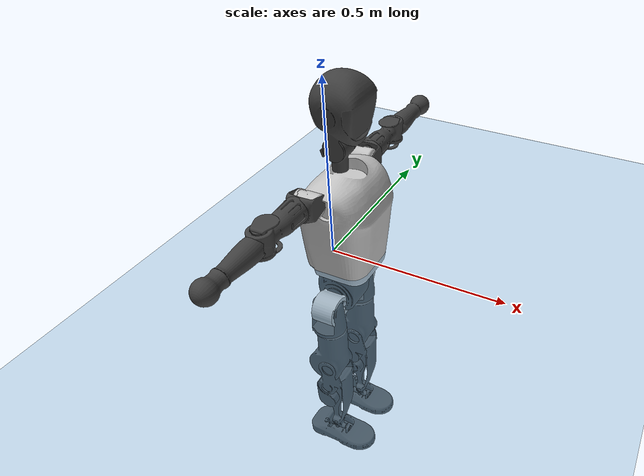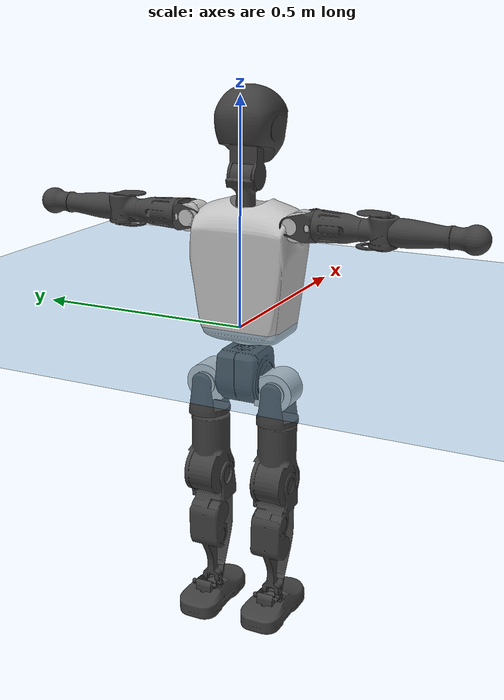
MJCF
<mujoco model="T1">
  <compiler angle="radian" assetdir="assets" balanceinertia="true" inertiafromgeom="false"/>

  <option timestep="0.005" density="1.2" viscosity="2e-05"/>

  <size nkey="1"/>

  <visual>
    <quality shadowsize="8192"/>
    <map shadowclip="0.5"/>
  </visual>

  <default>
    <default class="/">
      <joint armature="0.01" damping="0.01" frictionloss="0.1"/>
      <geom contype="0" conaffinity="0" group="1" solref="-1000 -80"/>
      <site size="0.01 0.005 0.005" group="5"/>
      <general forcelimited="true" biastype="affine" gainprm="25" biasprm="0 -25 -0.6"/>
      <default class="t1">
        <geom rgba="0.25 0.25 0.25 1"/>
        <default class="visual">
          <geom type="mesh" group="2"/>
        </default>
        <default class="collision">
          <geom group="3"/>
        </default>
        <default class="foot">
          <geom size="0.1115 0.05 0.015" type="box" condim="6" group="4" priority="1" solimp="0.015 1 0.015"/>
        </default>
        <default class="reward_collision_sphere">
          <geom group="5" rgba="1 0 0 1"/>
        </default>
      </default>
    </default>
  </default>

  <asset>
    <texture type="skybox" colorspace="auto" name="//unnamed_texture_0" builtin="gradient" rgb1="0.95 0.95 0.95" rgb2="0.95 0.95 0.95" width="100" height="600"/>
    <texture type="2d" colorspace="auto" name="texplane" builtin="checker" rgb1="0.345 0.575 0.748" rgb2="0.345 0.575 0.748" markrgb="1 1 1" width="512" height="512"/>
    <material name="MatPlane" class="/" texture="texplane" texuniform="true" texrepeat="2 2" specular="0.9"/>
    <mesh name="Trunk" class="/" file="Trunk.stl"/>
    <mesh name="H1" class="/" file="H1.stl"/>
    <mesh name="H2" class="/" file="H2.stl"/>
    <mesh name="AL1" class="/" file="AL1.stl"/>
    <mesh name="AL2" class="/" file="AL2.stl"/>
    <mesh name="AL3" class="/" file="AL3.stl"/>
    <mesh name="left_hand_link" class="/" file="left_hand_link.stl"/>
    <mesh name="AR1" class="/" file="AR1.stl"/>
    <mesh name="AR2" class="/" file="AR2.stl"/>
    <mesh name="AR3" class="/" file="AR3.stl"/>
    <mesh name="right_hand_link" class="/" file="right_hand_link.stl"/>
    <mesh name="Waist" class="/" file="Waist.stl"/>
    <mesh name="Hip_Pitch_Left" class="/" file="Hip_Pitch_Left.stl"/>
    <mesh name="Hip_Roll_Left" class="/" file="Hip_Roll_Left.stl"/>
    <mesh name="Hip_Yaw_Left" class="/" file="Hip_Yaw_Left.stl"/>
    <mesh name="Shank_Left" class="/" file="Shank_Left.stl"/>
    <mesh name="Ankle_Cross_Left" class="/" file="Ankle_Cross_Left.stl"/>
    <mesh name="left_foot_link" class="/" file="left_foot_link.stl"/>
    <mesh name="Hip_Pitch_Right" class="/" file="Hip_Pitch_Right.stl"/>
    <mesh name="Hip_Roll_Right" class="/" file="Hip_Roll_Right.stl"/>
    <mesh name="Hip_Yaw_Right" class="/" file="Hip_Yaw_Right.stl"/>
    <mesh name="Shank_Right" class="/" file="Shank_Right.stl"/>
    <mesh name="Ankle_Cross_Right" class="/" file="Ankle_Cross_Right.stl"/>
    <mesh name="right_foot_link" class="/" file="right_foot_link.stl"/>
  </asset>

  <worldbody>
    <geom name="floor" class="/" size="100 100 0.125" type="plane" group="0" material="MatPlane"/>
    <light name="toplight_shadow" class="/" pos="0 0 5" dir="0.0990148 0.0990148 -0.990148" type="directional" ambient="0.04 0.04 0.04" diffuse="0.55 0.55 0.55" specular="0.12 0.12 0.12"/>
    <light name="toplight_fill" class="/" pos="0 0 5" dir="0.0990148 0.0990148 -0.990148" type="directional" castshadow="false" ambient="0.04 0.04 0.04" diffuse="0.3 0.3 0.3" specular="0.08 0.08 0.08"/>
    <body name="trunk" childclass="t1" pos="-0.00048566 -0.00083949 -9.22456e-06" quat="0.999999 1.14425e-05 0.000145498 0.00124065">
      <inertial pos="0.0248986 0.000288793 0.111328" quat="0.999865 0.00900235 -0.0132842 -0.00348457" mass="5.19819" diaginertia="0.00194572 0.0258401 0.0745397"/>
      <joint name="//unnamed_joint_0" type="free" armature="0" damping="0" frictionloss="0"/>
      <geom name="//unnamed_geom_1" class="visual" rgba="0.76 0.76 0.76 1" mesh="Trunk"/>
      <geom name="//unnamed_geom_2" class="collision" size="0.0584438 0.0779251 0.116888" pos="0.0279585 0 0.128008" type="box"/>
      <geom name="//unnamed_geom_3" class="reward_collision_sphere" size="0.0896139" pos="0.0279585 0 0.106673"/>
      <geom name="//unnamed_geom_4" class="reward_collision_sphere" size="0.0116888" pos="0.0279585 0.0684289 0"/>
      <geom name="//unnamed_geom_5" class="reward_collision_sphere" size="0.0116888" pos="0.0279585 -0.0684289 0"/>
      <geom name="//unnamed_geom_6" class="reward_collision_sphere" size="0.0116888" pos="0.0279585 0.0861399 0.192012"/>
      <geom name="//unnamed_geom_7" class="reward_collision_sphere" size="0.0116888" pos="0.0279585 -0.0861399 0.192012"/>
      <site name="imu" pos="0.0207597 -0.00739207 -0.00612653" size="0.00779251"/>
      <camera name="track" pos="0 -1.61009 0" quat="0.707107 0.707107 0 0" mode="trackcom"/>
      <camera name="ego_camera" pos="0.056849 0 0.448027" quat="-0.5 -0.5 0.5 0.5"/>
      <body name="H1" pos="0.0345853 0.00443881 0.264627" quat="0.999999 0.00108182 0.000369534 -0.000264023">
        <inertial pos="-0.000512957 -0.000646146 0.0601473" quat="0.75974 0.0028546 0.0147469 0.650054" mass="0.204448" diaginertia="5.34818e-06 8.01001e-05 0.000207368"/>
        <joint name="AAHead_yaw" pos="0 0 0" axis="-0.0112488 0.0150911 0.999823" range="-1.59033 1.61144" armature="0.00668257" damping="0.0146069" frictionloss="0.0799443"/>
        <geom name="//unnamed_geom_8" class="visual" mesh="H1"/>
        <body name="H2" pos="0.00145421 -0.000480958 0.0650313" quat="0.999999 -0.000935881 0.000427173 6.28519e-05">
          <inertial pos="0.00381137 0.00594451 0.105046" quat="0.987411 0.102923 -0.0841973 -0.0856575" mass="0.282208" diaginertia="4.24823e-05 0.000630325 0.00233398"/>
          <joint name="Head_pitch" pos="0 0 0" axis="-4.91132e-07 -0.999999 0.00147119" range="-1.17435 0.355985" armature="0.00754365" damping="0.00955597" frictionloss="0.0758889"/>
          <geom name="//unnamed_geom_9" class="visual" mesh="H2"/>
          <geom name="//unnamed_geom_10" class="collision" size="0.0623401" pos="0.00465975 0 0.117341"/>
          <geom name="//unnamed_geom_11" class="reward_collision_sphere" size="0.0701326" pos="0.00931951 0 0.106673"/>
        </body>
      </body>
      <body name="AL1" pos="0.0289835 0.0818626 0.233823" quat="1 2.87036e-05 0.000428957 6.76757e-05">
        <inertial pos="0.00442981 0.0319851 0.0016939" quat="0.500711 0.490536 -0.514591 0.49382" mass="0.255462" diaginertia="3.02667e-05 0.000442275 0.000405689"/>
        <joint name="Left_Shoulder_Pitch" pos="0 0 0" axis="-5.15023e-05 0.999995 -0.00314221" range="-3.28126 1.1994" armature="0.00770866" damping="0.0040049" frictionloss="0.0809256"/>
        <geom name="//unnamed_geom_12" class="visual" rgba="0.76 0.76 0.76 1" mesh="AL1"/>
        <body name="AL2" pos="0.00430446 0.0350268 -0.000397703" quat="1 0.000527437 0.000535108 -0.000509536">
          <inertial pos="0.0033082 0.0279261 0.000642995" quat="0.487709 0.511655 -0.487672 0.512372" mass="0.0736222" diaginertia="8.19238e-06 0.000104006 0.000232393"/>
          <joint name="Left_Shoulder_Roll" pos="0 0 0" axis="-0.999972 0.0074632 0.00056837" range="-1.58356 1.80109" armature="0.00773363" damping="0" frictionloss="0.0697729"/>
          <geom name="//unnamed_geom_13" class="visual" mesh="AL2"/>
          <body name="AL3" pos="-0.00409079 0.048382 0.000955521" quat="1 1.6291e-05 -5.71394e-06 3.32679e-05">
            <inertial pos="0.00120665 0.0712456 -0.00211266" quat="0.708865 0.705284 -0.00135408 0.00914308" mass="0.481862" diaginertia="0.000282793 0.00443302 0.000881925"/>
            <joint name="Left_Elbow_Pitch" pos="0 0 0" axis="0.0120646 -0.999927 -9.3069e-05" range="-2.30971 2.22029" armature="0.00894182" damping="0" frictionloss="0.0770303"/>
            <geom name="//unnamed_geom_14" class="visual" mesh="AL3"/>
            <geom name="//unnamed_geom_15" class="collision" size="0.0233775 0.0584438" pos="0 0.0402523 0" quat="0.707105 0.707108 0 0" type="cylinder"/>
            <geom name="//unnamed_geom_16" class="reward_collision_sphere" size="0.028053"/>
            <body name="left_hand_link" pos="0.00226712 0.11888 0.000381735" quat="1 0.00023166 -0.00043828 -0.000587438">
              <inertial pos="-0.00579909 0.0907528 -0.00185732" quat="0.706902 0.707247 -0.00845806 -0.00446631" mass="0.151849" diaginertia="0.000172442 0.00268679 0.000302084"/>
              <joint name="Left_Elbow_Yaw" pos="0 0 0" axis="-0.00309373 -0.000876882 0.999995" stiffness="0.00571431" range="-2.42761 5.89669e-05" armature="0.0071439" damping="0.00147149" frictionloss="0.0706702"/>
              <geom name="//unnamed_geom_17" class="visual" mesh="left_hand_link"/>
              <geom name="//unnamed_geom_18" class="collision" size="0.0233775 0.0681845" pos="0 0.104656 0" quat="0.707105 0.707108 0 0" type="cylinder"/>
              <geom name="//unnamed_geom_19" class="reward_collision_sphere" size="0.0389625"/>
              <geom name="//unnamed_geom_20" class="reward_collision_sphere" size="0.0272738" pos="0 0.088555 0"/>
              <geom name="//unnamed_geom_21" class="reward_collision_sphere" size="0.0272738" pos="0 0.173085 0"/>
            </body>
          </body>
        </body>
      </body>
      <body name="AR1" pos="0.0228487 -0.082051 0.23508" quat="1 0.000164929 0.00054153 -3.25435e-05">
        <inertial pos="0.000469104 -0.0342564 -0.000225141" quat="0.503451 0.495889 -0.505824 0.494745" mass="0.247675" diaginertia="2.95707e-05 0.000445964 0.000404112"/>
        <joint name="Right_Shoulder_Pitch" pos="0 0 0" axis="-0.00672686 -0.999977 -0.000994598" range="-1.20271 3.35294" armature="0.00752798" damping="0.0273857" frictionloss="0.0768582"/>
        <geom name="//unnamed_geom_22" class="visual" rgba="0.76 0.76 0.76 1" mesh="AR1"/>
        <body name="AR2" pos="-0.00395551 -0.0360702 0.0035575" quat="1 -0.000886399 -0.000269561 -0.000178038">
          <inertial pos="0.0013892 -0.032246 0.00462759" quat="0.509952 0.492634 -0.515285 0.481395" mass="0.0749941" diaginertia="8.76172e-06 0.000122554 0.000246822"/>
          <joint name="Right_Shoulder_Roll" pos="0 0 0" axis="-0.999958 -0.00622101 -0.00679247" stiffness="0.017611" range="-1.84033 1.52596" armature="0.00822889" damping="0" frictionloss="0.0743327"/>
          <geom name="//unnamed_geom_23" class="visual" mesh="AR2"/>
          <body name="AR3" pos="-0.00353871 -0.0491802 0.00166819" quat="1 -0.000170413 0.000600874 0.00033972">
            <inertial pos="0.00378149 -0.0668667 -0.000494624" quat="0.705786 0.708424 0.000162381 0.00119152" mass="0.478957" diaginertia="0.000270997 0.00431661 0.000802651"/>
            <joint name="Right_Elbow_Pitch" pos="0 0 0" axis="0.00243063 0.999993 -0.00280266" stiffness="0.0115751" range="-2.26308 2.27553" armature="0.00801533" damping="0" frictionloss="0.0934565"/>
            <geom name="//unnamed_geom_24" class="visual" mesh="AR3"/>
            <geom name="//unnamed_geom_25" class="collision" size="0.0233775 0.0584438" pos="0 -0.0402523 0" quat="0.707105 0.707108 0 0" type="cylinder"/>
            <geom name="//unnamed_geom_26" class="reward_collision_sphere" size="0.028053"/>
            <body name="right_hand_link" pos="-0.000381357 -0.11816 0.00157742" quat="1 -0.000321461 -0.000136925 0.000373543">
              <inertial pos="2.42321e-05 -0.0906296 -0.00211099" quat="0.705434 0.708775 0.000233116 -0.000999614" mass="0.150678" diaginertia="0.000179542 0.00277768 0.000283721"/>
              <joint name="Right_Elbow_Yaw" pos="0 0 0" axis="-0.000948111 -0.00300843 0.999995" range="0.00232221 2.39816" armature="0.00741556" damping="0" frictionloss="0.0913962"/>
              <geom name="//unnamed_geom_27" class="visual" mesh="right_hand_link"/>
              <geom name="//unnamed_geom_28" class="collision" size="0.0233775 0.0681845" pos="0 -0.104656 0" quat="0.707105 0.707108 0 0" type="cylinder"/>
              <geom name="//unnamed_geom_29" class="reward_collision_sphere" size="0.0389625"/>
              <geom name="//unnamed_geom_30" class="reward_collision_sphere" size="0.0272738" pos="0 -0.088555 0"/>
              <geom name="//unnamed_geom_31" class="reward_collision_sphere" size="0.0272738" pos="0 -0.173085 0"/>
            </body>
          </body>
        </body>
      </body>
      <body name="Waist" pos="0.0292454 0.000616465 -0.120555" quat="0.999999 0.000711712 -0.000593013 -0.000873629">
        <inertial pos="-0.000579239 -0.000971062 0.00685207" quat="0.983633 0.00141171 -0.180174 0.00119298" mass="1.22553" diaginertia="0.00010898 0.00183187 0.00604507"/>
        <joint name="Waist" pos="0 0 0" axis="0.00102175 0.00815229 0.999966" range="-1.5707 1.56594" armature="0.00755225" damping="0.0147903" frictionloss="0.0911392"/>
        <geom name="//unnamed_geom_32" class="visual" mesh="Waist"/>
        <body name="Hip_Pitch_Left" pos="0.00170205 0.0878528 -0.00212091" quat="1 -0.000355069 -0.000594716 0.000233326">
          <inertial pos="-0.00121238 -0.00398214 -0.017643" quat="0.97443 0.224023 0.0167386 0.00438966" mass="0.469632" diaginertia="3.89057e-05 0.000473007 0.00161984"/>
          <joint name="Left_Hip_Pitch" pos="0 0 0" axis="-0.0129107 0.999894 0.00674133" stiffness="0.00171633" range="-1.84102 1.57235" armature="0.0075268" damping="0" frictionloss="0.0766175"/>
          <geom name="//unnamed_geom_33" class="visual" rgba="0.76 0.76 0.76 1" mesh="Hip_Pitch_Left"/>
          <body name="Hip_Roll_Left" pos="-0.00347289 0.00255726 -0.0197383" quat="0.999999 -0.00109973 0.000266536 -0.00101713">
            <inertial pos="0.000206268 0.000581857 -0.0570749" quat="0.705422 -0.00753405 -0.00843376 0.708697" mass="0.19766" diaginertia="4.3173e-05 0.000538896 0.000775613"/>
            <joint name="Left_Hip_Roll" pos="0 0 0" axis="-0.999911 0.0052278 0.0122456" stiffness="0.00507987" range="-1.65202 0.160165" armature="0.00758971" damping="0.00726638" frictionloss="0.0715858"/>
            <geom name="//unnamed_geom_34" class="visual" mesh="Hip_Roll_Left"/>
            <geom name="//unnamed_geom_35" class="reward_collision_sphere" size="0.0428588"/>
            <body name="Hip_Yaw_Left" pos="0.000872352 -0.00199329 -0.0871569" quat="0.999999 -0.000268833 -0.000739033 -0.00143394">
              <inertial pos="0.00109479 -0.00330336 -0.097422" quat="0.692331 -0.0287575 -0.0226761 0.72065" mass="0.984957" diaginertia="0.000520035 0.00835051 0.00353402"/>
              <joint name="Left_Hip_Yaw" pos="0 0 0" axis="-0.0114994 0.00121652 -0.999933" stiffness="0.0204607" range="-1.09899 0.946438" armature="0.00790558" damping="0.0175508" frictionloss="0.0692959"/>
              <geom name="//unnamed_geom_36" class="visual" mesh="Hip_Yaw_Left"/>
              <geom name="//unnamed_geom_37" class="collision" size="0.0389625 0.0623401" type="cylinder"/>
              <body name="Shank_Left" pos="-0.00288336 -0.00330396 -0.145167" quat="1 -0.000163289 3.75708e-05 0.000544906">
                <inertial pos="0.00202242 0.00230482 -0.130442" quat="0.997006 -0.000687865 -0.00271531 0.0772693" mass="0.822997" diaginertia="0.000764943 0.0109204 0.00256059"/>
                <joint name="Left_Knee_Pitch" pos="0 0 0" axis="0.00666543 0.999914 -0.0112853" range="-0.00754232 2.30992" armature="0.00824228" damping="0.0206085" frictionloss="0.0614242"/>
                <geom name="//unnamed_geom_38" class="visual" mesh="Shank_Left"/>
                <geom name="//unnamed_geom_39" class="collision" size="0.0389625 0.0584438" pos="0 0 -0.128008" type="cylinder"/>
                <geom name="//unnamed_geom_40" class="reward_collision_sphere" size="0.0506513"/>
                <body name="Ankle_Cross_Left" pos="0.00178951 -0.00277147 -0.297186" quat="1 0.000505878 -0.000672505 -5.28956e-05">
                  <inertial pos="-0.00228011 0.00234615 -0.0105377" quat="0.448543 0.54642 0.546521 0.448942" mass="0.0346141" diaginertia="6.50497e-07 8.64998e-06 1.62655e-05"/>
                  <joint name="Left_Ankle_Pitch" pos="0 0 0" axis="-0.00736808 0.999972 0.00134237" range="-0.855426 0.362829" armature="0.0058294" damping="0" frictionloss="0.0730913"/>
                  <geom name="//unnamed_geom_41" class="visual" mesh="Ankle_Cross_Left"/>
                  <body name="left_foot_link" pos="-0.00474165 0.00261714 -0.0142796" quat="1 0.000249066 -0.000212704 -0.000248564">
                    <inertial pos="0.00408401 -0.000571904 -0.0098124" quat="0.000181109 0.611604 0.00142254 0.791162" mass="0.321938" diaginertia="6.02604e-05 0.000852455 0.00319862"/>
                    <joint name="Left_Ankle_Roll" pos="0 0 0" axis="-0.999996 -0.00179433 -0.00233258" stiffness="0.0109062" range="-0.435674 0.421916" armature="0.00778773" damping="0.0345583" frictionloss="0.0686296"/>
                    <geom name="//unnamed_geom_42" class="visual" mesh="left_foot_link"/>
                    <geom name="left_foot" class="foot" size="0.0895754 0.0452624 0.0114752" pos="0.00465975 0 -0.016001"/>
                    <geom name="//unnamed_geom_44" class="reward_collision_sphere" size="0.040521" pos="0.00465975 0 -0.016001"/>
                    <geom name="//unnamed_geom_45" class="reward_collision_sphere" size="0.0233775" pos="0.0442677 -0.018516 -0.016001"/>
                    <geom name="//unnamed_geom_46" class="reward_collision_sphere" size="0.0233775" pos="-0.0326183 -0.018516 -0.016001"/>
                    <site name="left_foot" class="foot" pos="0.00465975 0 -0.016001" size="0.00779251"/>
                  </body>
                </body>
              </body>
            </body>
          </body>
        </body>
        <body name="Hip_Pitch_Right" pos="-0.000398737 -0.0840716 0.000352479" quat="1 -0.000212784 -3.29641e-05 -0.000410761">
          <inertial pos="-0.00205049 0.00564237 -0.0165373" quat="0.97191 -0.234031 0.0231361 -0.00922097" mass="0.496857" diaginertia="4.19388e-05 0.000472467 0.00175203"/>
          <joint name="Right_Hip_Pitch" pos="0 0 0" axis="-0.00631901 -0.99998 0.000450865" range="-1.45366 1.71015" armature="0.00852185" damping="0" frictionloss="0.0932529"/>
          <geom name="//unnamed_geom_47" class="visual" rgba="0.76 0.76 0.76 1" mesh="Hip_Pitch_Right"/>
          <body name="Hip_Roll_Right" pos="-0.00443957 0.000878389 -0.0191613" quat="1 0.000367223 0.000608737 0.000136507">
            <inertial pos="-0.00133156 0.00150443 -0.05923" quat="0.70458 -0.00126593 -0.0156742 0.70945" mass="0.186315" diaginertia="3.96371e-05 0.000515098 0.00069621"/>
            <joint name="Right_Hip_Roll" pos="0 0 0" axis="-0.999795 0.00358388 -0.0199442" range="-0.210772 1.51785" armature="0.00788263" damping="0.0142368" frictionloss="0.0877431"/>
            <geom name="//unnamed_geom_48" class="visual" mesh="Hip_Roll_Right"/>
            <geom name="//unnamed_geom_49" class="reward_collision_sphere" size="0.0428588"/>
            <body name="Hip_Yaw_Right" pos="0.0044558 0.00178055 -0.0851976" quat="1 0.000530035 -0.000376819 -0.000724103">
              <inertial pos="-0.00252111 -0.00373481 -0.095272" quat="0.703776 -0.0180976 -0.0521708 0.708273" mass="1.02399" diaginertia="0.000558569 0.00839561 0.00341451"/>
              <joint name="Right_Hip_Yaw" pos="0 0 0" axis="0.00498844 0.00444728 -0.999978" stiffness="0.00110954" range="-1.04819 1.05201" armature="0.00677381" damping="0" frictionloss="0.0767641"/>
              <geom name="//unnamed_geom_50" class="visual" mesh="Hip_Yaw_Right"/>
              <geom name="//unnamed_geom_51" class="collision" size="0.0389625 0.0623401" type="cylinder"/>
              <body name="Shank_Right" pos="-0.00339298 0.0042952 -0.144758" quat="1 1.66342e-05 1.46819e-05 -3.5932e-05">
                <inertial pos="0.00192245 -0.00597058 -0.131988" quat="0.99884 -0.00112969 -0.0317008 -0.0362317" mass="0.848417" diaginertia="0.000820066 0.0123574 0.00276174"/>
                <joint name="Right_Knee_Pitch" pos="0 0 0" axis="0.00192656 -0.999918 -0.0126585" stiffness="0.00108532" range="-2.35256 0.0146206" armature="0.00790439" damping="0.0223246" frictionloss="0.0731521"/>
                <geom name="//unnamed_geom_52" class="visual" mesh="Shank_Right"/>
                <geom name="//unnamed_geom_53" class="collision" size="0.0389625 0.0584438" pos="0 0 -0.128008" type="cylinder"/>
                <geom name="//unnamed_geom_54" class="reward_collision_sphere" size="0.0506513"/>
                <body name="Ankle_Cross_Right" pos="0.00379058 0.00132679 -0.301041" quat="1 0.000593122 0.0004635 0.000482799">
                  <inertial pos="-0.00398429 0.00248464 -0.00619587" quat="0.438478 0.538402 0.567631 0.442329" mass="0.033889" diaginertia="6.29302e-07 9.58016e-06 1.6127e-05"/>
                  <joint name="Right_Ankle_Pitch" pos="0 0 0" axis="-0.00453257 -0.999981 0.00428937" stiffness="0.00957801" range="-0.330952 0.871327" armature="0.00740535" damping="0.0254633" frictionloss="0.0758646"/>
                  <geom name="//unnamed_geom_55" class="visual" mesh="Ankle_Cross_Right"/>
                  <body name="right_foot_link" pos="0.00369393 -0.000129746 -0.0161488" quat="1 4.27549e-05 5.16113e-05 -2.83995e-05">
                    <inertial pos="-0.00235627 0.00155508 -0.0128659" quat="-5.49079e-05 0.620731 0.000131162 0.784024" mass="0.315533" diaginertia="5.75206e-05 0.000831937 0.00299925"/>
                    <joint name="Right_Ankle_Roll" pos="0 0 0" axis="-0.999996 0.0011099 0.00247026" range="-0.448968 0.444504" armature="0.00702058" damping="0" frictionloss="0.0800831"/>
                    <geom name="//unnamed_geom_56" class="visual" mesh="right_foot_link"/>
                    <geom name="right_foot" class="foot" size="0.101728 0.0435408 0.0125607" pos="0.00465975 0 -0.016001"/>
                    <geom name="//unnamed_geom_58" class="reward_collision_sphere" size="0.03117"/>
                    <geom name="//unnamed_geom_59" class="reward_collision_sphere" size="0.0233775" pos="0.00465975 0 -0.016001"/>
                    <geom name="//unnamed_geom_60" class="reward_collision_sphere" size="0.0233775" pos="0.0442677 0.018516 -0.016001"/>
                    <geom name="//unnamed_geom_61" class="reward_collision_sphere" size="0.0233775" pos="-0.0326183 0.018516 -0.016001"/>
                    <site name="right_foot" class="foot" pos="0.00465975 0 -0.016001" size="0.00779251"/>
                  </body>
                </body>
              </body>
            </body>
          </body>
        </body>
      </body>
    </body>
  </worldbody>

  <contact>
    <pair class="/" geom1="floor" geom2="left_foot" name="//unnamed_contact_0"/>
    <pair class="/" geom1="floor" geom2="right_foot" name="//unnamed_contact_1"/>
  </contact>

  <actuator>
    <general name="AAHead_yaw" class="/" joint="AAHead_yaw" forcerange="-5.28466 5.28466" gainprm="20.6031" biasprm="0 -20.6031 -0.488377"/>
    <general name="Head_pitch" class="/" joint="Head_pitch" forcerange="-5.9665 5.9665" gainprm="20.6031" biasprm="0 -20.6031 -0.488377"/>
    <general name="Left_Shoulder_Pitch" class="/" joint="Left_Shoulder_Pitch" forcerange="-14.8769 14.8769" gainprm="20.6031" biasprm="0 -20.6031 -0.488377"/>
    <general name="Left_Shoulder_Roll" class="/" joint="Left_Shoulder_Roll" forcerange="-13.3903 13.3903" gainprm="20.6031" biasprm="0 -20.6031 -0.488377"/>
    <general name="Left_Elbow_Pitch" class="/" joint="Left_Elbow_Pitch" forcerange="-13.3654 13.3654" gainprm="20.6031" biasprm="0 -20.6031 -0.488377"/>
    <general name="Left_Elbow_Yaw" class="/" joint="Left_Elbow_Yaw" forcerange="-14.2826 14.2826" gainprm="20.6031" biasprm="0 -20.6031 -0.488377"/>
    <general name="Right_Shoulder_Pitch" class="/" joint="Right_Shoulder_Pitch" forcerange="-13.3515 13.3515" gainprm="20.6031" biasprm="0 -20.6031 -0.488377"/>
    <general name="Right_Shoulder_Roll" class="/" joint="Right_Shoulder_Roll" forcerange="-12.7602 12.7602" gainprm="20.6031" biasprm="0 -20.6031 -0.488377"/>
    <general name="Right_Elbow_Pitch" class="/" joint="Right_Elbow_Pitch" forcerange="-13.7443 13.7443" gainprm="20.6031" biasprm="0 -20.6031 -0.488377"/>
    <general name="Right_Elbow_Yaw" class="/" joint="Right_Elbow_Yaw" forcerange="-15.2695 15.2695" gainprm="20.6031" biasprm="0 -20.6031 -0.488377"/>
    <general name="Waist" class="/" joint="Waist" forcerange="-21.4324 21.4324" gainprm="20.6031" biasprm="0 -20.6031 -0.488377"/>
    <general name="Left_Hip_Pitch" class="/" joint="Left_Hip_Pitch" forcerange="-35.8494 35.8494" gainprm="20.6031" biasprm="0 -20.6031 -0.488377"/>
    <general name="Left_Hip_Roll" class="/" joint="Left_Hip_Roll" forcerange="-25.5761 25.5761" gainprm="20.6031" biasprm="0 -20.6031 -0.488377"/>
    <general name="Left_Hip_Yaw" class="/" joint="Left_Hip_Yaw" forcerange="-24.6159 24.6159" gainprm="20.6031" biasprm="0 -20.6031 -0.488377"/>
    <general name="Left_Knee_Pitch" class="/" joint="Left_Knee_Pitch" forcerange="-48.4213 48.4213" gainprm="20.6031" biasprm="0 -20.6031 -0.488377"/>
    <general name="Left_Ankle_Pitch" class="/" joint="Left_Ankle_Pitch" forcerange="-15.1454 15.1454" gainprm="20.6031" biasprm="0 -20.6031 -0.488377"/>
    <general name="Left_Ankle_Roll" class="/" joint="Left_Ankle_Roll" forcerange="-11.3033 11.3033" gainprm="20.6031" biasprm="0 -20.6031 -0.488377"/>
    <general name="Right_Hip_Pitch" class="/" joint="Right_Hip_Pitch" forcerange="-33.0642 33.0642" gainprm="20.6031" biasprm="0 -20.6031 -0.488377"/>
    <general name="Right_Hip_Roll" class="/" joint="Right_Hip_Roll" forcerange="-21.2201 21.2201" gainprm="20.6031" biasprm="0 -20.6031 -0.488377"/>
    <general name="Right_Hip_Yaw" class="/" joint="Right_Hip_Yaw" forcerange="-21.5999 21.5999" gainprm="20.6031" biasprm="0 -20.6031 -0.488377"/>
    <general name="Right_Knee_Pitch" class="/" joint="Right_Knee_Pitch" forcerange="-49.6377 49.6377" gainprm="20.6031" biasprm="0 -20.6031 -0.488377"/>
    <general name="Right_Ankle_Pitch" class="/" joint="Right_Ankle_Pitch" forcerange="-17.3388 17.3388" gainprm="20.6031" biasprm="0 -20.6031 -0.488377"/>
    <general name="Right_Ankle_Roll" class="/" joint="Right_Ankle_Roll" forcerange="-12.6255 12.6255" gainprm="20.6031" biasprm="0 -20.6031 -0.488377"/>
  </actuator>

  <sensor>
    <gyro site="imu" name="imu_angular_velocity"/>
    <velocimeter site="imu" name="imu_linear_velocity"/>
    <framelinvel objtype="site" objname="left_foot" name="left_foot_global_linear_velocity"/>
    <framelinvel objtype="site" objname="right_foot" name="right_foot_global_linear_velocity"/>
  </sensor>

  <keyframe>
    <key name="home" qpos="0 0 0.6385 1 0 0 0 0 0 0 1.4 0 -0.4 0 -1.4 0 0.4 0 -0.4 0 0 0.8 -0.4 0 0.4 0 0 -0.8 0.4 0"/>
  </keyframe>
</mujoco>
